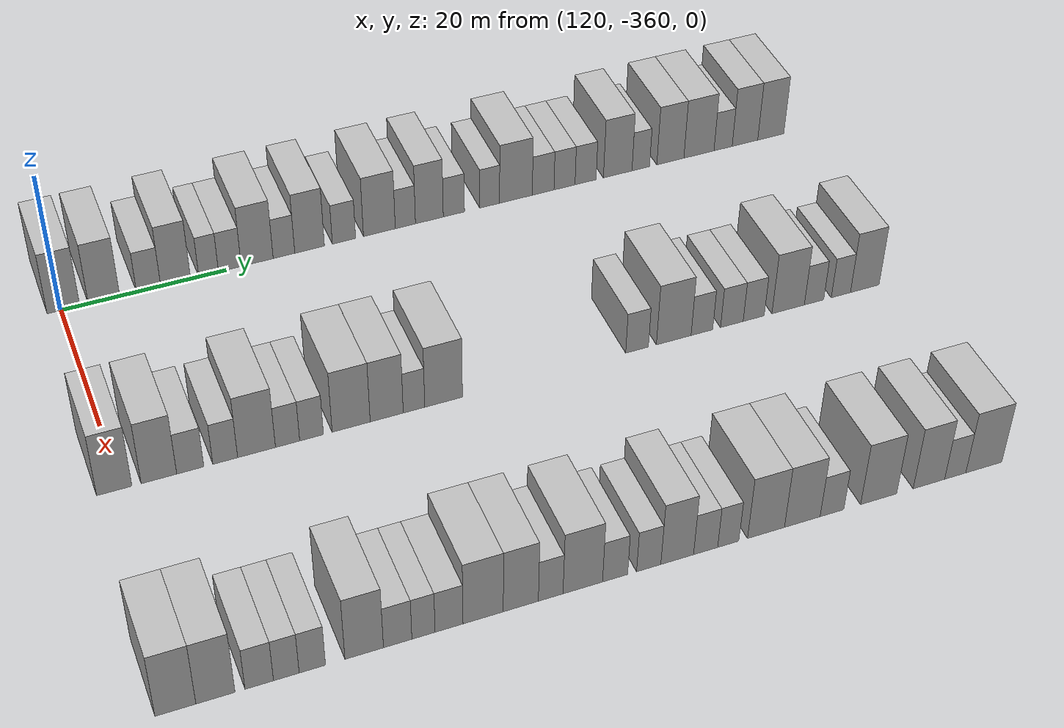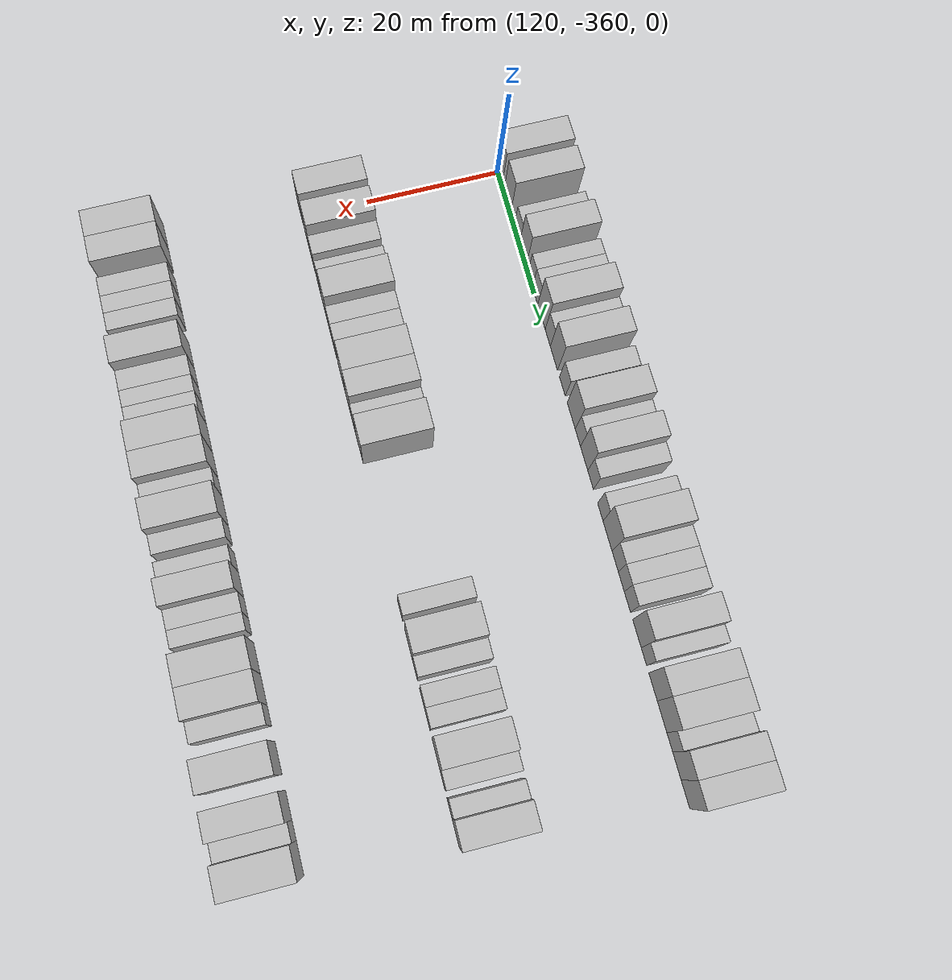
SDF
<sdf version="1.6">
 <world name="default">
  <model name="building_710">
   <static>1</static>
   <pose>115.0000 -359.6658 0 0.000000 0.000000 0.000000</pose>
   <link name="link">
    <pose>0 0 4.50 0 0 0</pose>
    <collision name="collision"><geometry><box><size>10.0000 3.8523 9.0000</size></box></geometry></collision>
    <visual name="visual">
     <cast_shadows>0</cast_shadows>
     <geometry><box><size>10.0000 3.8523 9.0000</size></box></geometry>
     <material>
      <script>
       <uri>model://HANNAS_wall/materials/scripts</uri>
       <uri>model://HANNAS_wall/materials/textures</uri>
       <name>vrc/HANNAS_wall</name>
      </script>
     </material>
    </visual>
   </link>
  </model>
  <model name="building_711">
   <static>1</static>
   <pose>115.0000 -354.8643 0 0.000000 0.000000 0.000000</pose>
   <link name="link">
    <pose>0 0 4.50 0 0 0</pose>
    <collision name="collision"><geometry><box><size>10.0000 3.7507 9.0000</size></box></geometry></collision>
    <visual name="visual">
     <cast_shadows>0</cast_shadows>
     <geometry><box><size>10.0000 3.7507 9.0000</size></box></geometry>
     <material>
      <script>
       <uri>model://HANNAS_wall/materials/scripts</uri>
       <uri>model://HANNAS_wall/materials/textures</uri>
       <name>vrc/HANNAS_wall</name>
      </script>
     </material>
    </visual>
   </link>
  </model>
  <model name="building_712">
   <static>1</static>
   <pose>115.0000 -349.5266 0 0.000000 0.000000 0.000000</pose>
   <link name="link">
    <pose>0 0 3.00 0 0 0</pose>
    <collision name="collision"><geometry><box><size>10.0000 2.9245 6.0000</size></box></geometry></collision>
    <visual name="visual">
     <cast_shadows>0</cast_shadows>
     <geometry><box><size>10.0000 2.9245 6.0000</size></box></geometry>
     <material>
      <script>
       <uri>model://HANNAS_wall/materials/scripts</uri>
       <uri>model://HANNAS_wall/materials/textures</uri>
       <name>vrc/HANNAS_wall</name>
      </script>
     </material>
    </visual>
   </link>
  </model>
  <model name="building_713">
   <static>1</static>
   <pose>115.0000 -346.2531 0 0.000000 0.000000 0.000000</pose>
   <link name="link">
    <pose>0 0 4.50 0 0 0</pose>
    <collision name="collision"><geometry><box><size>10.0000 3.6226 9.0000</size></box></geometry></collision>
    <visual name="visual">
     <cast_shadows>0</cast_shadows>
     <geometry><box><size>10.0000 3.6226 9.0000</size></box></geometry>
     <material>
      <script>
       <uri>model://HANNAS_wall/materials/scripts</uri>
       <uri>model://HANNAS_wall/materials/textures</uri>
       <name>vrc/HANNAS_wall</name>
      </script>
     </material>
    </visual>
   </link>
  </model>
  <model name="building_714">
   <static>1</static>
   <pose>115.0000 -342.2367 0 0.000000 0.000000 0.000000</pose>
   <link name="link">
    <pose>0 0 3.00 0 0 0</pose>
    <collision name="collision"><geometry><box><size>10.0000 2.4101 6.0000</size></box></geometry></collision>
    <visual name="visual">
     <cast_shadows>0</cast_shadows>
     <geometry><box><size>10.0000 2.4101 6.0000</size></box></geometry>
     <material>
      <script>
       <uri>model://HANNAS_wall/materials/scripts</uri>
       <uri>model://HANNAS_wall/materials/textures</uri>
       <name>vrc/HANNAS_wall</name>
      </script>
     </material>
    </visual>
   </link>
  </model>
  <model name="building_715">
   <static>1</static>
   <pose>115.0000 -339.6319 0 0.000000 0.000000 0.000000</pose>
   <link name="link">
    <pose>0 0 3.00 0 0 0</pose>
    <collision name="collision"><geometry><box><size>10.0000 2.7994 6.0000</size></box></geometry></collision>
    <visual name="visual">
     <cast_shadows>0</cast_shadows>
     <geometry><box><size>10.0000 2.7994 6.0000</size></box></geometry>
     <material>
      <script>
       <uri>model://HANNAS_wall/materials/scripts</uri>
       <uri>model://HANNAS_wall/materials/textures</uri>
       <name>vrc/HANNAS_wall</name>
      </script>
     </material>
    </visual>
   </link>
  </model>
  <model name="building_716">
   <static>1</static>
   <pose>115.0000 -336.2544 0 0.000000 0.000000 0.000000</pose>
   <link name="link">
    <pose>0 0 4.50 0 0 0</pose>
    <collision name="collision"><geometry><box><size>10.0000 3.9557 9.0000</size></box></geometry></collision>
    <visual name="visual">
     <cast_shadows>0</cast_shadows>
     <geometry><box><size>10.0000 3.9557 9.0000</size></box></geometry>
     <material>
      <script>
       <uri>model://HANNAS_wall/materials/scripts</uri>
       <uri>model://HANNAS_wall/materials/textures</uri>
       <name>vrc/HANNAS_wall</name>
      </script>
     </material>
    </visual>
   </link>
  </model>
  <model name="building_717">
   <static>1</static>
   <pose>115.0000 -332.9274 0 0.000000 0.000000 0.000000</pose>
   <link name="link">
    <pose>0 0 3.00 0 0 0</pose>
    <collision name="collision"><geometry><box><size>10.0000 2.6984 6.0000</size></box></geometry></collision>
    <visual name="visual">
     <cast_shadows>0</cast_shadows>
     <geometry><box><size>10.0000 2.6984 6.0000</size></box></geometry>
     <material>
      <script>
       <uri>model://HANNAS_wall/materials/scripts</uri>
       <uri>model://HANNAS_wall/materials/textures</uri>
       <name>vrc/HANNAS_wall</name>
      </script>
     </material>
    </visual>
   </link>
  </model>
  <model name="building_718">
   <static>1</static>
   <pose>115.0000 -329.7178 0 0.000000 0.000000 0.000000</pose>
   <link name="link">
    <pose>0 0 4.50 0 0 0</pose>
    <collision name="collision"><geometry><box><size>10.0000 3.7208 9.0000</size></box></geometry></collision>
    <visual name="visual">
     <cast_shadows>0</cast_shadows>
     <geometry><box><size>10.0000 3.7208 9.0000</size></box></geometry>
     <material>
      <script>
       <uri>model://HANNAS_wall/materials/scripts</uri>
       <uri>model://HANNAS_wall/materials/textures</uri>
       <name>vrc/HANNAS_wall</name>
      </script>
     </material>
    </visual>
   </link>
  </model>
  <model name="building_719">
   <static>1</static>
   <pose>115.0000 -325.3825 0 0.000000 0.000000 0.000000</pose>
   <link name="link">
    <pose>0 0 3.00 0 0 0</pose>
    <collision name="collision"><geometry><box><size>10.0000 2.9496 6.0000</size></box></geometry></collision>
    <visual name="visual">
     <cast_shadows>0</cast_shadows>
     <geometry><box><size>10.0000 2.9496 6.0000</size></box></geometry>
     <material>
      <script>
       <uri>model://HANNAS_wall/materials/scripts</uri>
       <uri>model://HANNAS_wall/materials/textures</uri>
       <name>vrc/HANNAS_wall</name>
      </script>
     </material>
    </visual>
   </link>
  </model>
  <model name="building_720">
   <static>1</static>
   <pose>115.0000 -320.8712 0 0.000000 0.000000 0.000000</pose>
   <link name="link">
    <pose>0 0 4.50 0 0 0</pose>
    <collision name="collision"><geometry><box><size>10.0000 4.0729 9.0000</size></box></geometry></collision>
    <visual name="visual">
     <cast_shadows>0</cast_shadows>
     <geometry><box><size>10.0000 4.0729 9.0000</size></box></geometry>
     <material>
      <script>
       <uri>model://HANNAS_wall/materials/scripts</uri>
       <uri>model://HANNAS_wall/materials/textures</uri>
       <name>vrc/HANNAS_wall</name>
      </script>
     </material>
    </visual>
   </link>
  </model>
  <model name="building_721">
   <static>1</static>
   <pose>115.0000 -317.5344 0 0.000000 0.000000 0.000000</pose>
   <link name="link">
    <pose>0 0 3.00 0 0 0</pose>
    <collision name="collision"><geometry><box><size>10.0000 2.6008 6.0000</size></box></geometry></collision>
    <visual name="visual">
     <cast_shadows>0</cast_shadows>
     <geometry><box><size>10.0000 2.6008 6.0000</size></box></geometry>
     <material>
      <script>
       <uri>model://HANNAS_wall/materials/scripts</uri>
       <uri>model://HANNAS_wall/materials/textures</uri>
       <name>vrc/HANNAS_wall</name>
      </script>
     </material>
    </visual>
   </link>
  </model>
  <model name="building_722">
   <static>1</static>
   <pose>115.0000 -314.4297 0 0.000000 0.000000 0.000000</pose>
   <link name="link">
    <pose>0 0 4.50 0 0 0</pose>
    <collision name="collision"><geometry><box><size>10.0000 3.6086 9.0000</size></box></geometry></collision>
    <visual name="visual">
     <cast_shadows>0</cast_shadows>
     <geometry><box><size>10.0000 3.6086 9.0000</size></box></geometry>
     <material>
      <script>
       <uri>model://HANNAS_wall/materials/scripts</uri>
       <uri>model://HANNAS_wall/materials/textures</uri>
       <name>vrc/HANNAS_wall</name>
      </script>
     </material>
    </visual>
   </link>
  </model>
  <model name="building_723">
   <static>1</static>
   <pose>115.0000 -311.2395 0 0.000000 0.000000 0.000000</pose>
   <link name="link">
    <pose>0 0 3.00 0 0 0</pose>
    <collision name="collision"><geometry><box><size>10.0000 2.7717 6.0000</size></box></geometry></collision>
    <visual name="visual">
     <cast_shadows>0</cast_shadows>
     <geometry><box><size>10.0000 2.7717 6.0000</size></box></geometry>
     <material>
      <script>
       <uri>model://HANNAS_wall/materials/scripts</uri>
       <uri>model://HANNAS_wall/materials/textures</uri>
       <name>vrc/HANNAS_wall</name>
      </script>
     </material>
    </visual>
   </link>
  </model>
  <model name="building_724">
   <static>1</static>
   <pose>115.0000 -306.5462 0 0.000000 0.000000 0.000000</pose>
   <link name="link">
    <pose>0 0 3.00 0 0 0</pose>
    <collision name="collision"><geometry><box><size>10.0000 2.6149 6.0000</size></box></geometry></collision>
    <visual name="visual">
     <cast_shadows>0</cast_shadows>
     <geometry><box><size>10.0000 2.6149 6.0000</size></box></geometry>
     <material>
      <script>
       <uri>model://HANNAS_wall/materials/scripts</uri>
       <uri>model://HANNAS_wall/materials/textures</uri>
       <name>vrc/HANNAS_wall</name>
      </script>
     </material>
    </visual>
   </link>
  </model>
  <model name="building_725">
   <static>1</static>
   <pose>115.0000 -303.0674 0 0.000000 0.000000 0.000000</pose>
   <link name="link">
    <pose>0 0 4.50 0 0 0</pose>
    <collision name="collision"><geometry><box><size>10.0000 4.3426 9.0000</size></box></geometry></collision>
    <visual name="visual">
     <cast_shadows>0</cast_shadows>
     <geometry><box><size>10.0000 4.3426 9.0000</size></box></geometry>
     <material>
      <script>
       <uri>model://HANNAS_wall/materials/scripts</uri>
       <uri>model://HANNAS_wall/materials/textures</uri>
       <name>vrc/HANNAS_wall</name>
      </script>
     </material>
    </visual>
   </link>
  </model>
  <model name="building_726">
   <static>1</static>
   <pose>115.0000 -299.4447 0 0.000000 0.000000 0.000000</pose>
   <link name="link">
    <pose>0 0 3.00 0 0 0</pose>
    <collision name="collision"><geometry><box><size>10.0000 2.9029 6.0000</size></box></geometry></collision>
    <visual name="visual">
     <cast_shadows>0</cast_shadows>
     <geometry><box><size>10.0000 2.9029 6.0000</size></box></geometry>
     <material>
      <script>
       <uri>model://HANNAS_wall/materials/scripts</uri>
       <uri>model://HANNAS_wall/materials/textures</uri>
       <name>vrc/HANNAS_wall</name>
      </script>
     </material>
    </visual>
   </link>
  </model>
  <model name="building_727">
   <static>1</static>
   <pose>115.0000 -296.5782 0 0.000000 0.000000 0.000000</pose>
   <link name="link">
    <pose>0 0 3.00 0 0 0</pose>
    <collision name="collision"><geometry><box><size>10.0000 2.8300 6.0000</size></box></geometry></collision>
    <visual name="visual">
     <cast_shadows>0</cast_shadows>
     <geometry><box><size>10.0000 2.8300 6.0000</size></box></geometry>
     <material>
      <script>
       <uri>model://HANNAS_wall/materials/scripts</uri>
       <uri>model://HANNAS_wall/materials/textures</uri>
       <name>vrc/HANNAS_wall</name>
      </script>
     </material>
    </visual>
   </link>
  </model>
  <model name="building_728">
   <static>1</static>
   <pose>115.0000 -293.7377 0 0.000000 0.000000 0.000000</pose>
   <link name="link">
    <pose>0 0 3.00 0 0 0</pose>
    <collision name="collision"><geometry><box><size>10.0000 2.8510 6.0000</size></box></geometry></collision>
    <visual name="visual">
     <cast_shadows>0</cast_shadows>
     <geometry><box><size>10.0000 2.8510 6.0000</size></box></geometry>
     <material>
      <script>
       <uri>model://HANNAS_wall/materials/scripts</uri>
       <uri>model://HANNAS_wall/materials/textures</uri>
       <name>vrc/HANNAS_wall</name>
      </script>
     </material>
    </visual>
   </link>
  </model>
  <model name="building_729">
   <static>1</static>
   <pose>115.0000 -289.3629 0 0.000000 0.000000 0.000000</pose>
   <link name="link">
    <pose>0 0 4.50 0 0 0</pose>
    <collision name="collision"><geometry><box><size>10.0000 3.8986 9.0000</size></box></geometry></collision>
    <visual name="visual">
     <cast_shadows>0</cast_shadows>
     <geometry><box><size>10.0000 3.8986 9.0000</size></box></geometry>
     <material>
      <script>
       <uri>model://HANNAS_wall/materials/scripts</uri>
       <uri>model://HANNAS_wall/materials/textures</uri>
       <name>vrc/HANNAS_wall</name>
      </script>
     </material>
    </visual>
   </link>
  </model>
  <model name="building_730">
   <static>1</static>
   <pose>115.0000 -286.2029 0 0.000000 0.000000 0.000000</pose>
   <link name="link">
    <pose>0 0 3.00 0 0 0</pose>
    <collision name="collision"><geometry><box><size>10.0000 2.4213 6.0000</size></box></geometry></collision>
    <visual name="visual">
     <cast_shadows>0</cast_shadows>
     <geometry><box><size>10.0000 2.4213 6.0000</size></box></geometry>
     <material>
      <script>
       <uri>model://HANNAS_wall/materials/scripts</uri>
       <uri>model://HANNAS_wall/materials/textures</uri>
       <name>vrc/HANNAS_wall</name>
      </script>
     </material>
    </visual>
   </link>
  </model>
  <model name="building_731">
   <static>1</static>
   <pose>115.0000 -282.1174 0 0.000000 0.000000 0.000000</pose>
   <link name="link">
    <pose>0 0 4.50 0 0 0</pose>
    <collision name="collision"><geometry><box><size>10.0000 3.7495 9.0000</size></box></geometry></collision>
    <visual name="visual">
     <cast_shadows>0</cast_shadows>
     <geometry><box><size>10.0000 3.7495 9.0000</size></box></geometry>
     <material>
      <script>
       <uri>model://HANNAS_wall/materials/scripts</uri>
       <uri>model://HANNAS_wall/materials/textures</uri>
       <name>vrc/HANNAS_wall</name>
      </script>
     </material>
    </visual>
   </link>
  </model>
  <model name="building_732">
   <static>1</static>
   <pose>115.0000 -278.1409 0 0.000000 0.000000 0.000000</pose>
   <link name="link">
    <pose>0 0 4.50 0 0 0</pose>
    <collision name="collision"><geometry><box><size>10.0000 4.2036 9.0000</size></box></geometry></collision>
    <visual name="visual">
     <cast_shadows>0</cast_shadows>
     <geometry><box><size>10.0000 4.2036 9.0000</size></box></geometry>
     <material>
      <script>
       <uri>model://HANNAS_wall/materials/scripts</uri>
       <uri>model://HANNAS_wall/materials/textures</uri>
       <name>vrc/HANNAS_wall</name>
      </script>
     </material>
    </visual>
   </link>
  </model>
  <model name="building_733">
   <static>1</static>
   <pose>115.0000 -274.7592 0 0.000000 0.000000 0.000000</pose>
   <link name="link">
    <pose>0 0 3.00 0 0 0</pose>
    <collision name="collision"><geometry><box><size>10.0000 2.5597 6.0000</size></box></geometry></collision>
    <visual name="visual">
     <cast_shadows>0</cast_shadows>
     <geometry><box><size>10.0000 2.5597 6.0000</size></box></geometry>
     <material>
      <script>
       <uri>model://HANNAS_wall/materials/scripts</uri>
       <uri>model://HANNAS_wall/materials/textures</uri>
       <name>vrc/HANNAS_wall</name>
      </script>
     </material>
    </visual>
   </link>
  </model>
  <model name="building_734">
   <static>1</static>
   <pose>115.0000 -271.6720 0 0.000000 0.000000 0.000000</pose>
   <link name="link">
    <pose>0 0 4.50 0 0 0</pose>
    <collision name="collision"><geometry><box><size>10.0000 3.6147 9.0000</size></box></geometry></collision>
    <visual name="visual">
     <cast_shadows>0</cast_shadows>
     <geometry><box><size>10.0000 3.6147 9.0000</size></box></geometry>
     <material>
      <script>
       <uri>model://HANNAS_wall/materials/scripts</uri>
       <uri>model://HANNAS_wall/materials/textures</uri>
       <name>vrc/HANNAS_wall</name>
      </script>
     </material>
    </visual>
   </link>
  </model>
  <model name="building_735">
   <static>1</static>
   <pose>115.0000 -268.0089 0 0.000000 0.000000 0.000000</pose>
   <link name="link">
    <pose>0 0 4.50 0 0 0</pose>
    <collision name="collision"><geometry><box><size>10.0000 3.7115 9.0000</size></box></geometry></collision>
    <visual name="visual">
     <cast_shadows>0</cast_shadows>
     <geometry><box><size>10.0000 3.7115 9.0000</size></box></geometry>
     <material>
      <script>
       <uri>model://HANNAS_wall/materials/scripts</uri>
       <uri>model://HANNAS_wall/materials/textures</uri>
       <name>vrc/HANNAS_wall</name>
      </script>
     </material>
    </visual>
   </link>
  </model>
  <model name="building_940">
   <static>1</static>
   <pose>145.0000 -360.6925 0 0.000000 0.000000 0.000000</pose>
   <link name="link">
    <pose>0 0 4.50 0 0 0</pose>
    <collision name="collision"><geometry><box><size>10.0000 3.8332 9.0000</size></box></geometry></collision>
    <visual name="visual">
     <cast_shadows>0</cast_shadows>
     <geometry><box><size>10.0000 3.8332 9.0000</size></box></geometry>
     <material>
      <script>
       <uri>model://HANNAS_wall/materials/scripts</uri>
       <uri>model://HANNAS_wall/materials/textures</uri>
       <name>vrc/HANNAS_wall</name>
      </script>
     </material>
    </visual>
   </link>
  </model>
  <model name="building_941">
   <static>1</static>
   <pose>145.0000 -355.8250 0 0.000000 0.000000 0.000000</pose>
   <link name="link">
    <pose>0 0 4.50 0 0 0</pose>
    <collision name="collision"><geometry><box><size>10.0000 3.9018 9.0000</size></box></geometry></collision>
    <visual name="visual">
     <cast_shadows>0</cast_shadows>
     <geometry><box><size>10.0000 3.9018 9.0000</size></box></geometry>
     <material>
      <script>
       <uri>model://HANNAS_wall/materials/scripts</uri>
       <uri>model://HANNAS_wall/materials/textures</uri>
       <name>vrc/HANNAS_wall</name>
      </script>
     </material>
    </visual>
   </link>
  </model>
  <model name="building_942">
   <static>1</static>
   <pose>145.0000 -352.3770 0 0.000000 0.000000 0.000000</pose>
   <link name="link">
    <pose>0 0 3.00 0 0 0</pose>
    <collision name="collision"><geometry><box><size>10.0000 2.9942 6.0000</size></box></geometry></collision>
    <visual name="visual">
     <cast_shadows>0</cast_shadows>
     <geometry><box><size>10.0000 2.9942 6.0000</size></box></geometry>
     <material>
      <script>
       <uri>model://HANNAS_wall/materials/scripts</uri>
       <uri>model://HANNAS_wall/materials/textures</uri>
       <name>vrc/HANNAS_wall</name>
      </script>
     </material>
    </visual>
   </link>
  </model>
  <model name="building_943">
   <static>1</static>
   <pose>145.0000 -348.4962 0 0.000000 0.000000 0.000000</pose>
   <link name="link">
    <pose>0 0 3.00 0 0 0</pose>
    <collision name="collision"><geometry><box><size>10.0000 2.7674 6.0000</size></box></geometry></collision>
    <visual name="visual">
     <cast_shadows>0</cast_shadows>
     <geometry><box><size>10.0000 2.7674 6.0000</size></box></geometry>
     <material>
      <script>
       <uri>model://HANNAS_wall/materials/scripts</uri>
       <uri>model://HANNAS_wall/materials/textures</uri>
       <name>vrc/HANNAS_wall</name>
      </script>
     </material>
    </visual>
   </link>
  </model>
  <model name="building_944">
   <static>1</static>
   <pose>145.0000 -344.9891 0 0.000000 0.000000 0.000000</pose>
   <link name="link">
    <pose>0 0 4.50 0 0 0</pose>
    <collision name="collision"><geometry><box><size>10.0000 4.2466 9.0000</size></box></geometry></collision>
    <visual name="visual">
     <cast_shadows>0</cast_shadows>
     <geometry><box><size>10.0000 4.2466 9.0000</size></box></geometry>
     <material>
      <script>
       <uri>model://HANNAS_wall/materials/scripts</uri>
       <uri>model://HANNAS_wall/materials/textures</uri>
       <name>vrc/HANNAS_wall</name>
      </script>
     </material>
    </visual>
   </link>
  </model>
  <model name="building_945">
   <static>1</static>
   <pose>145.0000 -341.4945 0 0.000000 0.000000 0.000000</pose>
   <link name="link">
    <pose>0 0 3.00 0 0 0</pose>
    <collision name="collision"><geometry><box><size>10.0000 2.7427 6.0000</size></box></geometry></collision>
    <visual name="visual">
     <cast_shadows>0</cast_shadows>
     <geometry><box><size>10.0000 2.7427 6.0000</size></box></geometry>
     <material>
      <script>
       <uri>model://HANNAS_wall/materials/scripts</uri>
       <uri>model://HANNAS_wall/materials/textures</uri>
       <name>vrc/HANNAS_wall</name>
      </script>
     </material>
    </visual>
   </link>
  </model>
  <model name="building_946">
   <static>1</static>
   <pose>145.0000 -338.7697 0 0.000000 0.000000 0.000000</pose>
   <link name="link">
    <pose>0 0 3.00 0 0 0</pose>
    <collision name="collision"><geometry><box><size>10.0000 2.7070 6.0000</size></box></geometry></collision>
    <visual name="visual">
     <cast_shadows>0</cast_shadows>
     <geometry><box><size>10.0000 2.7070 6.0000</size></box></geometry>
     <material>
      <script>
       <uri>model://HANNAS_wall/materials/scripts</uri>
       <uri>model://HANNAS_wall/materials/textures</uri>
       <name>vrc/HANNAS_wall</name>
      </script>
     </material>
    </visual>
   </link>
  </model>
  <model name="building_947">
   <static>1</static>
   <pose>145.0000 -334.2240 0 0.000000 0.000000 0.000000</pose>
   <link name="link">
    <pose>0 0 4.50 0 0 0</pose>
    <collision name="collision"><geometry><box><size>10.0000 4.3844 9.0000</size></box></geometry></collision>
    <visual name="visual">
     <cast_shadows>0</cast_shadows>
     <geometry><box><size>10.0000 4.3844 9.0000</size></box></geometry>
     <material>
      <script>
       <uri>model://HANNAS_wall/materials/scripts</uri>
       <uri>model://HANNAS_wall/materials/textures</uri>
       <name>vrc/HANNAS_wall</name>
      </script>
     </material>
    </visual>
   </link>
  </model>
  <model name="building_948">
   <static>1</static>
   <pose>145.0000 -330.1103 0 0.000000 0.000000 0.000000</pose>
   <link name="link">
    <pose>0 0 4.50 0 0 0</pose>
    <collision name="collision"><geometry><box><size>10.0000 3.8429 9.0000</size></box></geometry></collision>
    <visual name="visual">
     <cast_shadows>0</cast_shadows>
     <geometry><box><size>10.0000 3.8429 9.0000</size></box></geometry>
     <material>
      <script>
       <uri>model://HANNAS_wall/materials/scripts</uri>
       <uri>model://HANNAS_wall/materials/textures</uri>
       <name>vrc/HANNAS_wall</name>
      </script>
     </material>
    </visual>
   </link>
  </model>
  <model name="building_949">
   <static>1</static>
   <pose>145.0000 -326.9254 0 0.000000 0.000000 0.000000</pose>
   <link name="link">
    <pose>0 0 3.00 0 0 0</pose>
    <collision name="collision"><geometry><box><size>10.0000 2.5270 6.0000</size></box></geometry></collision>
    <visual name="visual">
     <cast_shadows>0</cast_shadows>
     <geometry><box><size>10.0000 2.5270 6.0000</size></box></geometry>
     <material>
      <script>
       <uri>model://HANNAS_wall/materials/scripts</uri>
       <uri>model://HANNAS_wall/materials/textures</uri>
       <name>vrc/HANNAS_wall</name>
      </script>
     </material>
    </visual>
   </link>
  </model>
  <model name="building_950">
   <static>1</static>
   <pose>145.0000 -323.4396 0 0.000000 0.000000 0.000000</pose>
   <link name="link">
    <pose>0 0 4.50 0 0 0</pose>
    <collision name="collision"><geometry><box><size>10.0000 4.4446 9.0000</size></box></geometry></collision>
    <visual name="visual">
     <cast_shadows>0</cast_shadows>
     <geometry><box><size>10.0000 4.4446 9.0000</size></box></geometry>
     <material>
      <script>
       <uri>model://HANNAS_wall/materials/scripts</uri>
       <uri>model://HANNAS_wall/materials/textures</uri>
       <name>vrc/HANNAS_wall</name>
      </script>
     </material>
    </visual>
   </link>
  </model>
  <model name="building_951">
   <static>1</static>
   <pose>145.0000 -299.9782 0 0.000000 0.000000 0.000000</pose>
   <link name="link">
    <pose>0 0 3.00 0 0 0</pose>
    <collision name="collision"><geometry><box><size>10.0000 2.8261 6.0000</size></box></geometry></collision>
    <visual name="visual">
     <cast_shadows>0</cast_shadows>
     <geometry><box><size>10.0000 2.8261 6.0000</size></box></geometry>
     <material>
      <script>
       <uri>model://HANNAS_wall/materials/scripts</uri>
       <uri>model://HANNAS_wall/materials/textures</uri>
       <name>vrc/HANNAS_wall</name>
      </script>
     </material>
    </visual>
   </link>
  </model>
  <model name="building_952">
   <static>1</static>
   <pose>145.0000 -295.3827 0 0.000000 0.000000 0.000000</pose>
   <link name="link">
    <pose>0 0 4.50 0 0 0</pose>
    <collision name="collision"><geometry><box><size>10.0000 4.3648 9.0000</size></box></geometry></collision>
    <visual name="visual">
     <cast_shadows>0</cast_shadows>
     <geometry><box><size>10.0000 4.3648 9.0000</size></box></geometry>
     <material>
      <script>
       <uri>model://HANNAS_wall/materials/scripts</uri>
       <uri>model://HANNAS_wall/materials/textures</uri>
       <name>vrc/HANNAS_wall</name>
      </script>
     </material>
    </visual>
   </link>
  </model>
  <model name="building_953">
   <static>1</static>
   <pose>145.0000 -291.8298 0 0.000000 0.000000 0.000000</pose>
   <link name="link">
    <pose>0 0 3.00 0 0 0</pose>
    <collision name="collision"><geometry><box><size>10.0000 2.7412 6.0000</size></box></geometry></collision>
    <visual name="visual">
     <cast_shadows>0</cast_shadows>
     <geometry><box><size>10.0000 2.7412 6.0000</size></box></geometry>
     <material>
      <script>
       <uri>model://HANNAS_wall/materials/scripts</uri>
       <uri>model://HANNAS_wall/materials/textures</uri>
       <name>vrc/HANNAS_wall</name>
      </script>
     </material>
    </visual>
   </link>
  </model>
  <model name="building_954">
   <static>1</static>
   <pose>145.0000 -288.0147 0 0.000000 0.000000 0.000000</pose>
   <link name="link">
    <pose>0 0 3.00 0 0 0</pose>
    <collision name="collision"><geometry><box><size>10.0000 2.8889 6.0000</size></box></geometry></collision>
    <visual name="visual">
     <cast_shadows>0</cast_shadows>
     <geometry><box><size>10.0000 2.8889 6.0000</size></box></geometry>
     <material>
      <script>
       <uri>model://HANNAS_wall/materials/scripts</uri>
       <uri>model://HANNAS_wall/materials/textures</uri>
       <name>vrc/HANNAS_wall</name>
      </script>
     </material>
    </visual>
   </link>
  </model>
  <model name="building_955">
   <static>1</static>
   <pose>145.0000 -285.2172 0 0.000000 0.000000 0.000000</pose>
   <link name="link">
    <pose>0 0 3.00 0 0 0</pose>
    <collision name="collision"><geometry><box><size>10.0000 2.7063 6.0000</size></box></geometry></collision>
    <visual name="visual">
     <cast_shadows>0</cast_shadows>
     <geometry><box><size>10.0000 2.7063 6.0000</size></box></geometry>
     <material>
      <script>
       <uri>model://HANNAS_wall/materials/scripts</uri>
       <uri>model://HANNAS_wall/materials/textures</uri>
       <name>vrc/HANNAS_wall</name>
      </script>
     </material>
    </visual>
   </link>
  </model>
  <model name="building_956">
   <static>1</static>
   <pose>145.0000 -280.7550 0 0.000000 0.000000 0.000000</pose>
   <link name="link">
    <pose>0 0 4.50 0 0 0</pose>
    <collision name="collision"><geometry><box><size>10.0000 4.2181 9.0000</size></box></geometry></collision>
    <visual name="visual">
     <cast_shadows>0</cast_shadows>
     <geometry><box><size>10.0000 4.2181 9.0000</size></box></geometry>
     <material>
      <script>
       <uri>model://HANNAS_wall/materials/scripts</uri>
       <uri>model://HANNAS_wall/materials/textures</uri>
       <name>vrc/HANNAS_wall</name>
      </script>
     </material>
    </visual>
   </link>
  </model>
  <model name="building_957">
   <static>1</static>
   <pose>145.0000 -277.3798 0 0.000000 0.000000 0.000000</pose>
   <link name="link">
    <pose>0 0 3.00 0 0 0</pose>
    <collision name="collision"><geometry><box><size>10.0000 2.5322 6.0000</size></box></geometry></collision>
    <visual name="visual">
     <cast_shadows>0</cast_shadows>
     <geometry><box><size>10.0000 2.5322 6.0000</size></box></geometry>
     <material>
      <script>
       <uri>model://HANNAS_wall/materials/scripts</uri>
       <uri>model://HANNAS_wall/materials/textures</uri>
       <name>vrc/HANNAS_wall</name>
      </script>
     </material>
    </visual>
   </link>
  </model>
  <model name="building_958">
   <static>1</static>
   <pose>145.0000 -273.8522 0 0.000000 0.000000 0.000000</pose>
   <link name="link">
    <pose>0 0 3.00 0 0 0</pose>
    <collision name="collision"><geometry><box><size>10.0000 2.5231 6.0000</size></box></geometry></collision>
    <visual name="visual">
     <cast_shadows>0</cast_shadows>
     <geometry><box><size>10.0000 2.5231 6.0000</size></box></geometry>
     <material>
      <script>
       <uri>model://HANNAS_wall/materials/scripts</uri>
       <uri>model://HANNAS_wall/materials/textures</uri>
       <name>vrc/HANNAS_wall</name>
      </script>
     </material>
    </visual>
   </link>
  </model>
  <model name="building_959">
   <static>1</static>
   <pose>145.0000 -270.6916 0 0.000000 0.000000 0.000000</pose>
   <link name="link">
    <pose>0 0 4.50 0 0 0</pose>
    <collision name="collision"><geometry><box><size>10.0000 3.7981 9.0000</size></box></geometry></collision>
    <visual name="visual">
     <cast_shadows>0</cast_shadows>
     <geometry><box><size>10.0000 3.7981 9.0000</size></box></geometry>
     <material>
      <script>
       <uri>model://HANNAS_wall/materials/scripts</uri>
       <uri>model://HANNAS_wall/materials/textures</uri>
       <name>vrc/HANNAS_wall</name>
      </script>
     </material>
    </visual>
   </link>
  </model>
  <model name="building_1166">
   <static>1</static>
   <pose>175.0000 -361.7522 0 0.000000 0.000000 0.000000</pose>
   <link name="link">
    <pose>0 0 4.50 0 0 0</pose>
    <collision name="collision"><geometry><box><size>10.0000 4.0550 9.0000</size></box></geometry></collision>
    <visual name="visual">
     <cast_shadows>0</cast_shadows>
     <geometry><box><size>10.0000 4.0550 9.0000</size></box></geometry>
     <material>
      <script>
       <uri>model://HANNAS_wall/materials/scripts</uri>
       <uri>model://HANNAS_wall/materials/textures</uri>
       <name>vrc/HANNAS_wall</name>
      </script>
     </material>
    </visual>
   </link>
  </model>
  <model name="building_1167">
   <static>1</static>
   <pose>175.0000 -357.7718 0 0.000000 0.000000 0.000000</pose>
   <link name="link">
    <pose>0 0 4.50 0 0 0</pose>
    <collision name="collision"><geometry><box><size>10.0000 3.9057 9.0000</size></box></geometry></collision>
    <visual name="visual">
     <cast_shadows>0</cast_shadows>
     <geometry><box><size>10.0000 3.9057 9.0000</size></box></geometry>
     <material>
      <script>
       <uri>model://HANNAS_wall/materials/scripts</uri>
       <uri>model://HANNAS_wall/materials/textures</uri>
       <name>vrc/HANNAS_wall</name>
      </script>
     </material>
    </visual>
   </link>
  </model>
  <model name="building_1168">
   <static>1</static>
   <pose>175.0000 -353.3773 0 0.000000 0.000000 0.000000</pose>
   <link name="link">
    <pose>0 0 3.00 0 0 0</pose>
    <collision name="collision"><geometry><box><size>10.0000 2.8833 6.0000</size></box></geometry></collision>
    <visual name="visual">
     <cast_shadows>0</cast_shadows>
     <geometry><box><size>10.0000 2.8833 6.0000</size></box></geometry>
     <material>
      <script>
       <uri>model://HANNAS_wall/materials/scripts</uri>
       <uri>model://HANNAS_wall/materials/textures</uri>
       <name>vrc/HANNAS_wall</name>
      </script>
     </material>
    </visual>
   </link>
  </model>
  <model name="building_1169">
   <static>1</static>
   <pose>175.0000 -350.6323 0 0.000000 0.000000 0.000000</pose>
   <link name="link">
    <pose>0 0 3.00 0 0 0</pose>
    <collision name="collision"><geometry><box><size>10.0000 2.6066 6.0000</size></box></geometry></collision>
    <visual name="visual">
     <cast_shadows>0</cast_shadows>
     <geometry><box><size>10.0000 2.6066 6.0000</size></box></geometry>
     <material>
      <script>
       <uri>model://HANNAS_wall/materials/scripts</uri>
       <uri>model://HANNAS_wall/materials/textures</uri>
       <name>vrc/HANNAS_wall</name>
      </script>
     </material>
    </visual>
   </link>
  </model>
  <model name="building_1170">
   <static>1</static>
   <pose>175.0000 -347.9808 0 0.000000 0.000000 0.000000</pose>
   <link name="link">
    <pose>0 0 3.00 0 0 0</pose>
    <collision name="collision"><geometry><box><size>10.0000 2.6963 6.0000</size></box></geometry></collision>
    <visual name="visual">
     <cast_shadows>0</cast_shadows>
     <geometry><box><size>10.0000 2.6963 6.0000</size></box></geometry>
     <material>
      <script>
       <uri>model://HANNAS_wall/materials/scripts</uri>
       <uri>model://HANNAS_wall/materials/textures</uri>
       <name>vrc/HANNAS_wall</name>
      </script>
     </material>
    </visual>
   </link>
  </model>
  <model name="building_1171">
   <static>1</static>
   <pose>175.0000 -342.6354 0 0.000000 0.000000 0.000000</pose>
   <link name="link">
    <pose>0 0 4.50 0 0 0</pose>
    <collision name="collision"><geometry><box><size>10.0000 3.9945 9.0000</size></box></geometry></collision>
    <visual name="visual">
     <cast_shadows>0</cast_shadows>
     <geometry><box><size>10.0000 3.9945 9.0000</size></box></geometry>
     <material>
      <script>
       <uri>model://HANNAS_wall/materials/scripts</uri>
       <uri>model://HANNAS_wall/materials/textures</uri>
       <name>vrc/HANNAS_wall</name>
      </script>
     </material>
    </visual>
   </link>
  </model>
  <model name="building_1172">
   <static>1</static>
   <pose>175.0000 -339.1490 0 0.000000 0.000000 0.000000</pose>
   <link name="link">
    <pose>0 0 3.00 0 0 0</pose>
    <collision name="collision"><geometry><box><size>10.0000 2.9782 6.0000</size></box></geometry></collision>
    <visual name="visual">
     <cast_shadows>0</cast_shadows>
     <geometry><box><size>10.0000 2.9782 6.0000</size></box></geometry>
     <material>
      <script>
       <uri>model://HANNAS_wall/materials/scripts</uri>
       <uri>model://HANNAS_wall/materials/textures</uri>
       <name>vrc/HANNAS_wall</name>
      </script>
     </material>
    </visual>
   </link>
  </model>
  <model name="building_1173">
   <static>1</static>
   <pose>175.0000 -336.4392 0 0.000000 0.000000 0.000000</pose>
   <link name="link">
    <pose>0 0 3.00 0 0 0</pose>
    <collision name="collision"><geometry><box><size>10.0000 2.4415 6.0000</size></box></geometry></collision>
    <visual name="visual">
     <cast_shadows>0</cast_shadows>
     <geometry><box><size>10.0000 2.4415 6.0000</size></box></geometry>
     <material>
      <script>
       <uri>model://HANNAS_wall/materials/scripts</uri>
       <uri>model://HANNAS_wall/materials/textures</uri>
       <name>vrc/HANNAS_wall</name>
      </script>
     </material>
    </visual>
   </link>
  </model>
  <model name="building_1174">
   <static>1</static>
   <pose>175.0000 -333.7329 0 0.000000 0.000000 0.000000</pose>
   <link name="link">
    <pose>0 0 3.00 0 0 0</pose>
    <collision name="collision"><geometry><box><size>10.0000 2.9710 6.0000</size></box></geometry></collision>
    <visual name="visual">
     <cast_shadows>0</cast_shadows>
     <geometry><box><size>10.0000 2.9710 6.0000</size></box></geometry>
     <material>
      <script>
       <uri>model://HANNAS_wall/materials/scripts</uri>
       <uri>model://HANNAS_wall/materials/textures</uri>
       <name>vrc/HANNAS_wall</name>
      </script>
     </material>
    </visual>
   </link>
  </model>
  <model name="building_1175">
   <static>1</static>
   <pose>175.0000 -330.0919 0 0.000000 0.000000 0.000000</pose>
   <link name="link">
    <pose>0 0 4.50 0 0 0</pose>
    <collision name="collision"><geometry><box><size>10.0000 4.3110 9.0000</size></box></geometry></collision>
    <visual name="visual">
     <cast_shadows>0</cast_shadows>
     <geometry><box><size>10.0000 4.3110 9.0000</size></box></geometry>
     <material>
      <script>
       <uri>model://HANNAS_wall/materials/scripts</uri>
       <uri>model://HANNAS_wall/materials/textures</uri>
       <name>vrc/HANNAS_wall</name>
      </script>
     </material>
    </visual>
   </link>
  </model>
  <model name="building_1176">
   <static>1</static>
   <pose>175.0000 -326.0356 0 0.000000 0.000000 0.000000</pose>
   <link name="link">
    <pose>0 0 4.50 0 0 0</pose>
    <collision name="collision"><geometry><box><size>10.0000 3.8016 9.0000</size></box></geometry></collision>
    <visual name="visual">
     <cast_shadows>0</cast_shadows>
     <geometry><box><size>10.0000 3.8016 9.0000</size></box></geometry>
     <material>
      <script>
       <uri>model://HANNAS_wall/materials/scripts</uri>
       <uri>model://HANNAS_wall/materials/textures</uri>
       <name>vrc/HANNAS_wall</name>
      </script>
     </material>
    </visual>
   </link>
  </model>
  <model name="building_1177">
   <static>1</static>
   <pose>175.0000 -322.7894 0 0.000000 0.000000 0.000000</pose>
   <link name="link">
    <pose>0 0 3.00 0 0 0</pose>
    <collision name="collision"><geometry><box><size>10.0000 2.6908 6.0000</size></box></geometry></collision>
    <visual name="visual">
     <cast_shadows>0</cast_shadows>
     <geometry><box><size>10.0000 2.6908 6.0000</size></box></geometry>
     <material>
      <script>
       <uri>model://HANNAS_wall/materials/scripts</uri>
       <uri>model://HANNAS_wall/materials/textures</uri>
       <name>vrc/HANNAS_wall</name>
      </script>
     </material>
    </visual>
   </link>
  </model>
  <model name="building_1178">
   <static>1</static>
   <pose>175.0000 -319.2683 0 0.000000 0.000000 0.000000</pose>
   <link name="link">
    <pose>0 0 4.50 0 0 0</pose>
    <collision name="collision"><geometry><box><size>10.0000 4.3513 9.0000</size></box></geometry></collision>
    <visual name="visual">
     <cast_shadows>0</cast_shadows>
     <geometry><box><size>10.0000 4.3513 9.0000</size></box></geometry>
     <material>
      <script>
       <uri>model://HANNAS_wall/materials/scripts</uri>
       <uri>model://HANNAS_wall/materials/textures</uri>
       <name>vrc/HANNAS_wall</name>
      </script>
     </material>
    </visual>
   </link>
  </model>
  <model name="building_1179">
   <static>1</static>
   <pose>175.0000 -315.6975 0 0.000000 0.000000 0.000000</pose>
   <link name="link">
    <pose>0 0 3.00 0 0 0</pose>
    <collision name="collision"><geometry><box><size>10.0000 2.7904 6.0000</size></box></geometry></collision>
    <visual name="visual">
     <cast_shadows>0</cast_shadows>
     <geometry><box><size>10.0000 2.7904 6.0000</size></box></geometry>
     <material>
      <script>
       <uri>model://HANNAS_wall/materials/scripts</uri>
       <uri>model://HANNAS_wall/materials/textures</uri>
       <name>vrc/HANNAS_wall</name>
      </script>
     </material>
    </visual>
   </link>
  </model>
  <model name="building_1180">
   <static>1</static>
   <pose>175.0000 -311.9431 0 0.000000 0.000000 0.000000</pose>
   <link name="link">
    <pose>0 0 3.00 0 0 0</pose>
    <collision name="collision"><geometry><box><size>10.0000 2.7183 6.0000</size></box></geometry></collision>
    <visual name="visual">
     <cast_shadows>0</cast_shadows>
     <geometry><box><size>10.0000 2.7183 6.0000</size></box></geometry>
     <material>
      <script>
       <uri>model://HANNAS_wall/materials/scripts</uri>
       <uri>model://HANNAS_wall/materials/textures</uri>
       <name>vrc/HANNAS_wall</name>
      </script>
     </material>
    </visual>
   </link>
  </model>
  <model name="building_1181">
   <static>1</static>
   <pose>175.0000 -308.7331 0 0.000000 0.000000 0.000000</pose>
   <link name="link">
    <pose>0 0 4.50 0 0 0</pose>
    <collision name="collision"><geometry><box><size>10.0000 3.7017 9.0000</size></box></geometry></collision>
    <visual name="visual">
     <cast_shadows>0</cast_shadows>
     <geometry><box><size>10.0000 3.7017 9.0000</size></box></geometry>
     <material>
      <script>
       <uri>model://HANNAS_wall/materials/scripts</uri>
       <uri>model://HANNAS_wall/materials/textures</uri>
       <name>vrc/HANNAS_wall</name>
      </script>
     </material>
    </visual>
   </link>
  </model>
  <model name="building_1182">
   <static>1</static>
   <pose>175.0000 -305.5075 0 0.000000 0.000000 0.000000</pose>
   <link name="link">
    <pose>0 0 3.00 0 0 0</pose>
    <collision name="collision"><geometry><box><size>10.0000 2.7494 6.0000</size></box></geometry></collision>
    <visual name="visual">
     <cast_shadows>0</cast_shadows>
     <geometry><box><size>10.0000 2.7494 6.0000</size></box></geometry>
     <material>
      <script>
       <uri>model://HANNAS_wall/materials/scripts</uri>
       <uri>model://HANNAS_wall/materials/textures</uri>
       <name>vrc/HANNAS_wall</name>
      </script>
     </material>
    </visual>
   </link>
  </model>
  <model name="building_1183">
   <static>1</static>
   <pose>175.0000 -302.9213 0 0.000000 0.000000 0.000000</pose>
   <link name="link">
    <pose>0 0 3.00 0 0 0</pose>
    <collision name="collision"><geometry><box><size>10.0000 2.4232 6.0000</size></box></geometry></collision>
    <visual name="visual">
     <cast_shadows>0</cast_shadows>
     <geometry><box><size>10.0000 2.4232 6.0000</size></box></geometry>
     <material>
      <script>
       <uri>model://HANNAS_wall/materials/scripts</uri>
       <uri>model://HANNAS_wall/materials/textures</uri>
       <name>vrc/HANNAS_wall</name>
      </script>
     </material>
    </visual>
   </link>
  </model>
  <model name="building_1184">
   <static>1</static>
   <pose>175.0000 -298.5668 0 0.000000 0.000000 0.000000</pose>
   <link name="link">
    <pose>0 0 4.50 0 0 0</pose>
    <collision name="collision"><geometry><box><size>10.0000 4.2859 9.0000</size></box></geometry></collision>
    <visual name="visual">
     <cast_shadows>0</cast_shadows>
     <geometry><box><size>10.0000 4.2859 9.0000</size></box></geometry>
     <material>
      <script>
       <uri>model://HANNAS_wall/materials/scripts</uri>
       <uri>model://HANNAS_wall/materials/textures</uri>
       <name>vrc/HANNAS_wall</name>
      </script>
     </material>
    </visual>
   </link>
  </model>
  <model name="building_1185">
   <static>1</static>
   <pose>175.0000 -294.3376 0 0.000000 0.000000 0.000000</pose>
   <link name="link">
    <pose>0 0 4.50 0 0 0</pose>
    <collision name="collision"><geometry><box><size>10.0000 4.1724 9.0000</size></box></geometry></collision>
    <visual name="visual">
     <cast_shadows>0</cast_shadows>
     <geometry><box><size>10.0000 4.1724 9.0000</size></box></geometry>
     <material>
      <script>
       <uri>model://HANNAS_wall/materials/scripts</uri>
       <uri>model://HANNAS_wall/materials/textures</uri>
       <name>vrc/HANNAS_wall</name>
      </script>
     </material>
    </visual>
   </link>
  </model>
  <model name="building_1186">
   <static>1</static>
   <pose>175.0000 -290.8513 0 0.000000 0.000000 0.000000</pose>
   <link name="link">
    <pose>0 0 3.00 0 0 0</pose>
    <collision name="collision"><geometry><box><size>10.0000 2.8002 6.0000</size></box></geometry></collision>
    <visual name="visual">
     <cast_shadows>0</cast_shadows>
     <geometry><box><size>10.0000 2.8002 6.0000</size></box></geometry>
     <material>
      <script>
       <uri>model://HANNAS_wall/materials/scripts</uri>
       <uri>model://HANNAS_wall/materials/textures</uri>
       <name>vrc/HANNAS_wall</name>
      </script>
     </material>
    </visual>
   </link>
  </model>
  <model name="building_1187">
   <static>1</static>
   <pose>175.0000 -285.2964 0 0.000000 0.000000 0.000000</pose>
   <link name="link">
    <pose>0 0 4.50 0 0 0</pose>
    <collision name="collision"><geometry><box><size>10.0000 4.3098 9.0000</size></box></geometry></collision>
    <visual name="visual">
     <cast_shadows>0</cast_shadows>
     <geometry><box><size>10.0000 4.3098 9.0000</size></box></geometry>
     <material>
      <script>
       <uri>model://HANNAS_wall/materials/scripts</uri>
       <uri>model://HANNAS_wall/materials/textures</uri>
       <name>vrc/HANNAS_wall</name>
      </script>
     </material>
    </visual>
   </link>
  </model>
  <model name="building_1188">
   <static>1</static>
   <pose>175.0000 -279.2316 0 0.000000 0.000000 0.000000</pose>
   <link name="link">
    <pose>0 0 4.50 0 0 0</pose>
    <collision name="collision"><geometry><box><size>10.0000 3.8197 9.0000</size></box></geometry></collision>
    <visual name="visual">
     <cast_shadows>0</cast_shadows>
     <geometry><box><size>10.0000 3.8197 9.0000</size></box></geometry>
     <material>
      <script>
       <uri>model://HANNAS_wall/materials/scripts</uri>
       <uri>model://HANNAS_wall/materials/textures</uri>
       <name>vrc/HANNAS_wall</name>
      </script>
     </material>
    </visual>
   </link>
  </model>
  <model name="building_1189">
   <static>1</static>
   <pose>175.0000 -276.0281 0 0.000000 0.000000 0.000000</pose>
   <link name="link">
    <pose>0 0 3.00 0 0 0</pose>
    <collision name="collision"><geometry><box><size>10.0000 2.5875 6.0000</size></box></geometry></collision>
    <visual name="visual">
     <cast_shadows>0</cast_shadows>
     <geometry><box><size>10.0000 2.5875 6.0000</size></box></geometry>
     <material>
      <script>
       <uri>model://HANNAS_wall/materials/scripts</uri>
       <uri>model://HANNAS_wall/materials/textures</uri>
       <name>vrc/HANNAS_wall</name>
      </script>
     </material>
    </visual>
   </link>
  </model>
  <model name="building_1190">
   <static>1</static>
   <pose>175.0000 -272.5157 0 0.000000 0.000000 0.000000</pose>
   <link name="link">
    <pose>0 0 4.50 0 0 0</pose>
    <collision name="collision"><geometry><box><size>10.0000 4.4373 9.0000</size></box></geometry></collision>
    <visual name="visual">
     <cast_shadows>0</cast_shadows>
     <geometry><box><size>10.0000 4.4373 9.0000</size></box></geometry>
     <material>
      <script>
       <uri>model://HANNAS_wall/materials/scripts</uri>
       <uri>model://HANNAS_wall/materials/textures</uri>
       <name>vrc/HANNAS_wall</name>
      </script>
     </material>
    </visual>
   </link>
  </model>
 </world>
</sdf>
